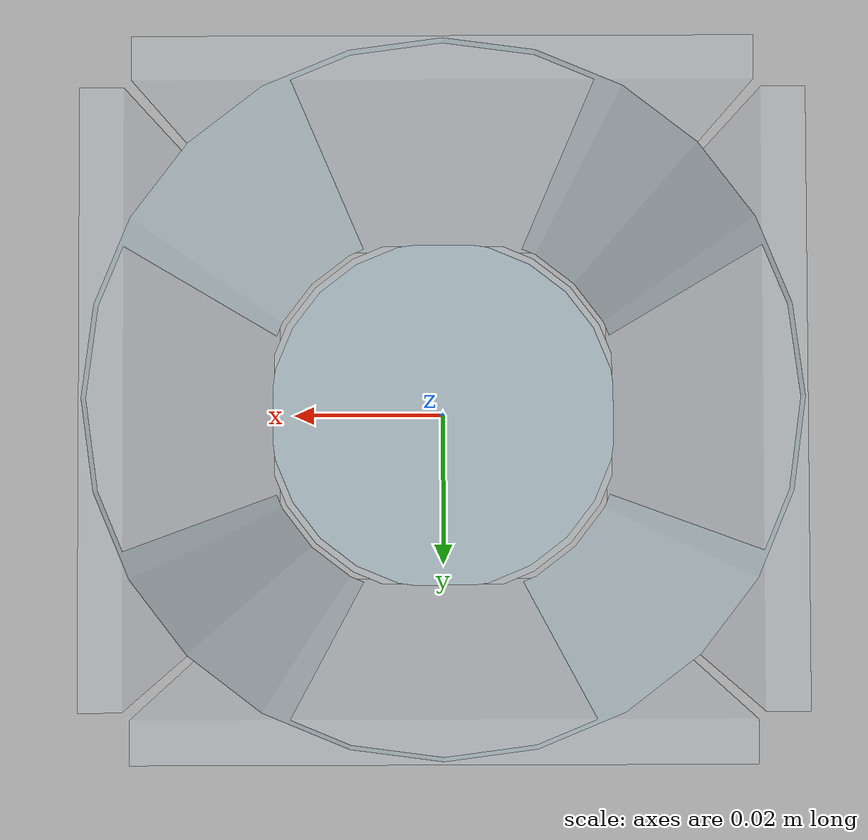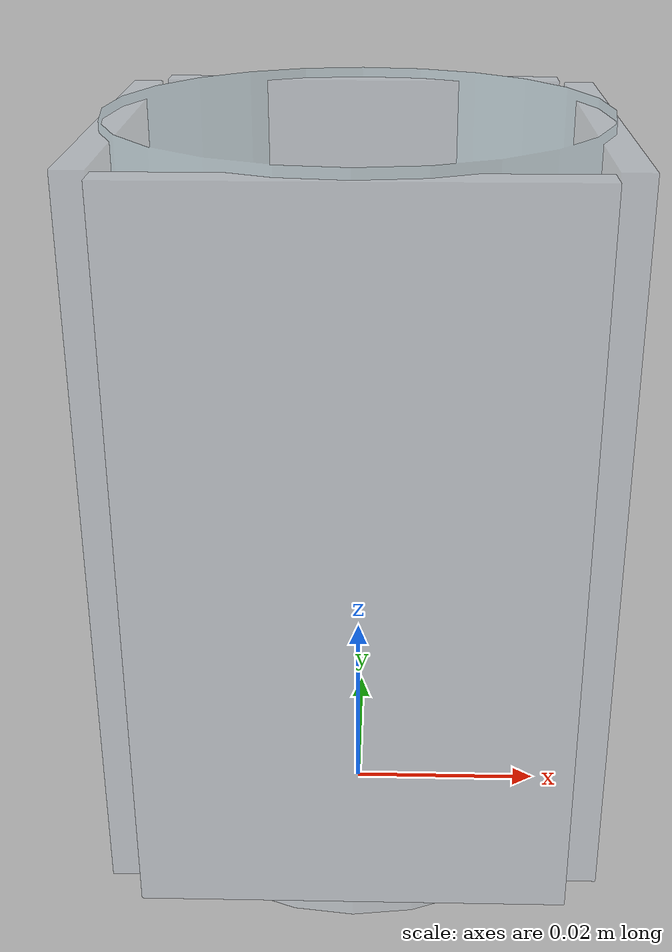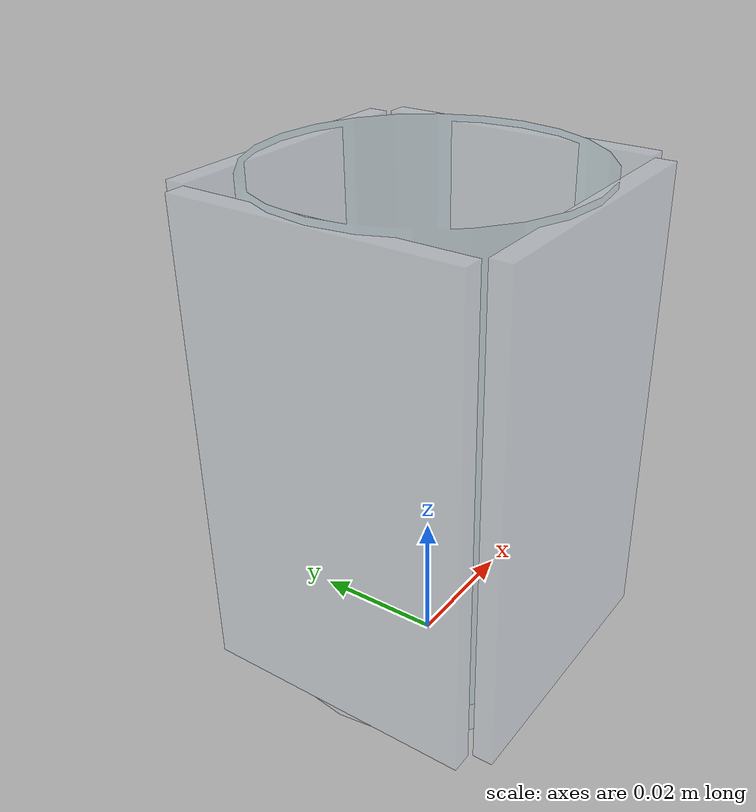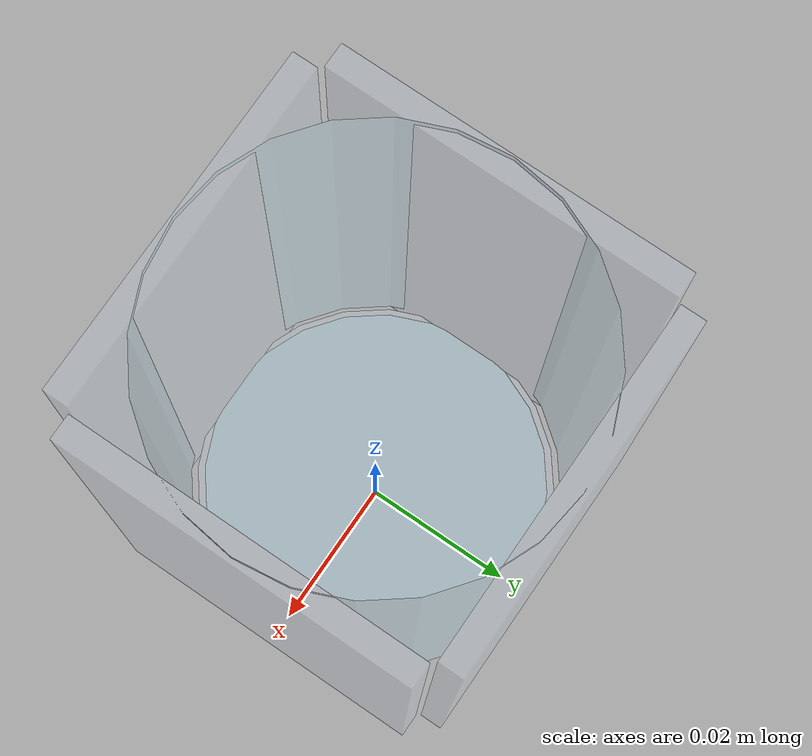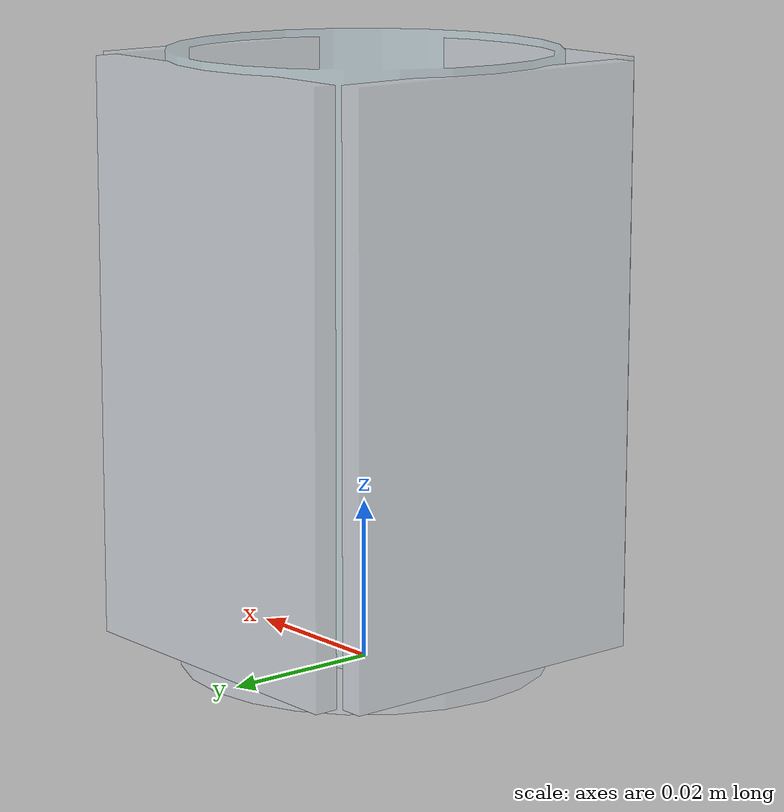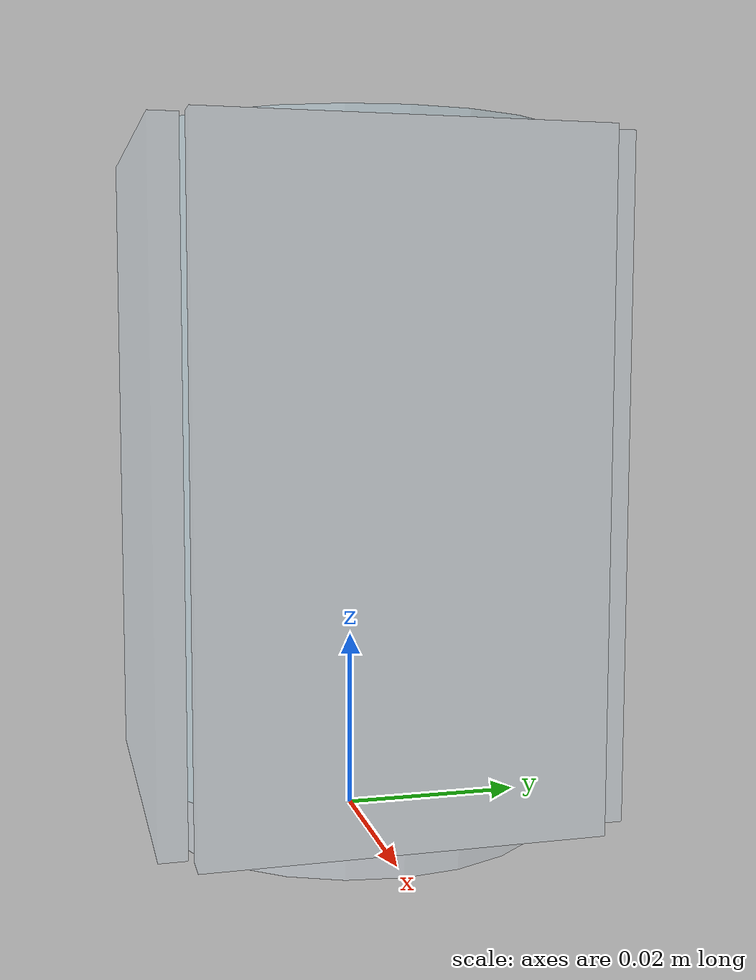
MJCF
<mujoco model="clear_glass_cup">
  <asset>
    <mesh name="glass_open_wall_mesh"
          vertex="0.02400 0.00000 0.00600 0.02318 0.00621 0.00600 0.02078 0.01200 0.00600 0.01697 0.01697 0.00600 0.01200 0.02078 0.00600 0.00621 0.02318 0.00600 0.00000 0.02400 0.00600 -0.00621 0.02318 0.00600 -0.01200 0.02078 0.00600 -0.01697 0.01697 0.00600 -0.02078 0.01200 0.00600 -0.02318 0.00621 0.00600 -0.02400 0.00000 0.00600 -0.02318 -0.00621 0.00600 -0.02078 -0.01200 0.00600 -0.01697 -0.01697 0.00600 -0.01200 -0.02078 0.00600 -0.00621 -0.02318 0.00600 -0.00000 -0.02400 0.00600 0.00621 -0.02318 0.00600 0.01200 -0.02078 0.00600 0.01697 -0.01697 0.00600 0.02078 -0.01200 0.00600 0.02318 -0.00621 0.00600 0.02400 0.00000 0.07600 0.02318 0.00621 0.07600 0.02078 0.01200 0.07600 0.01697 0.01697 0.07600 0.01200 0.02078 0.07600 0.00621 0.02318 0.07600 0.00000 0.02400 0.07600 -0.00621 0.02318 0.07600 -0.01200 0.02078 0.07600 -0.01697 0.01697 0.07600 -0.02078 0.01200 0.07600 -0.02318 0.00621 0.07600 -0.02400 0.00000 0.07600 -0.02318 -0.00621 0.07600 -0.02078 -0.01200 0.07600 -0.01697 -0.01697 0.07600 -0.01200 -0.02078 0.07600 -0.00621 -0.02318 0.07600 -0.00000 -0.02400 0.07600 0.00621 -0.02318 0.07600 0.01200 -0.02078 0.07600 0.01697 -0.01697 0.07600 0.02078 -0.01200 0.07600 0.02318 -0.00621 0.07600"
          face="0 1 25 0 25 24 25 1 0 24 25 0 1 2 26 1 26 25 26 2 1 25 26 1 2 3 27 2 27 26 27 3 2 26 27 2 3 4 28 3 28 27 28 4 3 27 28 3 4 5 29 4 29 28 29 5 4 28 29 4 5 6 30 5 30 29 30 6 5 29 30 5 6 7 31 6 31 30 31 7 6 30 31 6 7 8 32 7 32 31 32 8 7 31 32 7 8 9 33 8 33 32 33 9 8 32 33 8 9 10 34 9 34 33 34 10 9 33 34 9 10 11 35 10 35 34 35 11 10 34 35 10 11 12 36 11 36 35 36 12 11 35 36 11 12 13 37 12 37 36 37 13 12 36 37 12 13 14 38 13 38 37 38 14 13 37 38 13 14 15 39 14 39 38 39 15 14 38 39 14 15 16 40 15 40 39 40 16 15 39 40 15 16 17 41 16 41 40 41 17 16 40 41 16 17 18 42 17 42 41 42 18 17 41 42 17 18 19 43 18 43 42 43 19 18 42 43 18 19 20 44 19 44 43 44 20 19 43 44 19 20 21 45 20 45 44 45 21 20 44 45 20 21 22 46 21 46 45 46 22 21 45 46 21 22 23 47 22 47 46 47 23 22 46 47 22 23 0 24 23 24 47 24 0 23 47 24 23" />
    <material name="glass_wall" rgba="0.72 0.92 1.0 0.30" specular="0.8" shininess="0.7" reflectance="0.35" />
    <material name="glass_base" rgba="0.70 0.88 0.96 0.38" specular="0.7" shininess="0.6" reflectance="0.25" />
  </asset>
  <worldbody>
    <body>
      <body name="object">
        <geom name="glass_open_wall_visual" type="mesh" mesh="glass_open_wall_mesh" material="glass_wall" group="1" contype="0" conaffinity="0" />
        <geom name="glass_bottom_visual" type="cylinder" pos="0 0 0.005" size="0.022 0.004" material="glass_base" group="1" contype="0" conaffinity="0" />

        <geom name="glass_bottom_collision" type="cylinder" pos="0 0 0.004" size="0.023 0.004" rgba="0.8 0.9 1.0 0.05" group="0" friction="0.95 0.3 0.1" />
        <geom name="glass_front_collision" type="box" pos="0 -0.023 0.039" size="0.021 0.0015 0.036" rgba="0.8 0.9 1.0 0.05" group="0" friction="0.95 0.3 0.1" />
        <geom name="glass_back_collision" type="box" pos="0 0.023 0.039" size="0.021 0.0015 0.036" rgba="0.8 0.9 1.0 0.05" group="0" friction="0.95 0.3 0.1" />
        <geom name="glass_left_collision" type="box" pos="-0.023 0 0.039" size="0.0015 0.021 0.036" rgba="0.8 0.9 1.0 0.05" group="0" friction="0.95 0.3 0.1" />
        <geom name="glass_right_collision" type="box" pos="0.023 0 0.039" size="0.0015 0.021 0.036" rgba="0.8 0.9 1.0 0.05" group="0" friction="0.95 0.3 0.1" />
      </body>
      <site rgba="0 0 0 0" size="0.005" pos="0 0 -0.004" name="bottom_site" />
      <site rgba="0 0 0 0" size="0.005" pos="0 0 0.080" name="top_site" />
      <site rgba="0 0 0 0" size="0.030" pos="0.030 0.030 0" name="horizontal_radius_site" />
    </body>
  </worldbody>
</mujoco>
